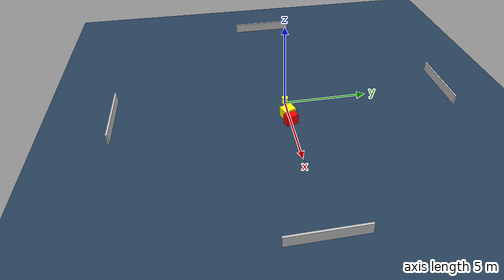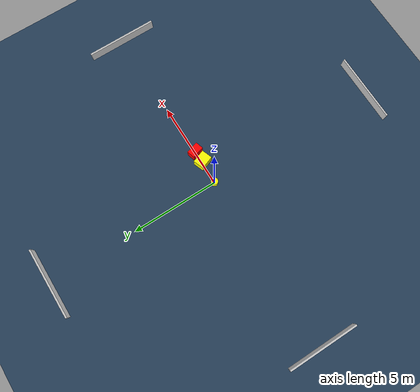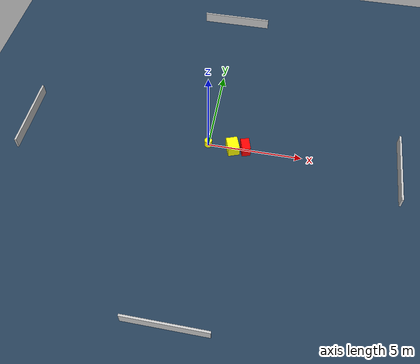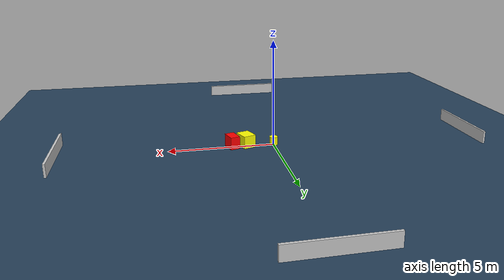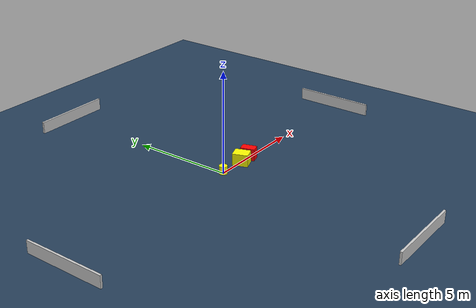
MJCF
<?xml version="1.0" ?>
<mujoco model="generated_environment">
  <option timestep="0.01" integrator="RK4" cone="elliptic"/>
  <default>
    <geom density="1"/>
  </default>
  <asset>
    <texture builtin="gradient" height="3072" name="skybox" rgb1="0.3 0.5 0.7" rgb2="0 0 0" type="skybox" width="512"/>
    <texture builtin="checker" height="300" name="groundplane" rgb1="0.2 0.3 0.4" rgb2="0.1 0.2 0.3" type="2d" width="300"/>
    <material name="groundplane" reflectance="0.2" texrepeat="5 5" texture="groundplane"/>
  </asset>
  <worldbody>
    <light dir="0 0 -1" directional="true" pos="0 0 1.5"/>
    <geom condim="3" friction="0.5 0.005 0.001" material="groundplane" name="floor" pos="0 0 0" size="0 0 0.05" type="plane"/>
    <body name="walls">
      <geom name="wall_1" condim="4" pos="-10.0 0.0 0.3" rgba="0.800000011920929 0.800000011920929 0.800000011920929 1.0" size="0.05 2.0 0.3" type="box"/>
      <geom name="wall_2" condim="4" pos="10.0 0.0 0.3" rgba="0.800000011920929 0.800000011920929 0.800000011920929 1.0" size="0.05 2.0 0.3" type="box"/>
      <geom name="wall_3" condim="4" pos="0.0 -10.0 0.3" rgba="0.800000011920929 0.800000011920929 0.800000011920929 1.0" size="2.0 0.05 0.3" type="box"/>
      <geom name="wall_4" condim="4" pos="0.0 10.0 0.3" rgba="0.800000011920929 0.800000011920929 0.800000011920929 1.0" size="2.0 0.05 0.3" type="box"/>
    </body>
    <body name="robot">
      <joint name="joint_x" type="slide" pos="0 0 0" axis="1 0 0"/>
      <joint name="joint_y" type="slide" pos="0 0 0" axis="0 1 0"/>
      <geom name="robot" type="cylinder" pos="0.0 0.0 0.2" size="0.2 0.2 0.0" mass="5.0" friction="1.0 0.005 0.0001" condim="4" rgba="1.0 1.0 0.0 1.0"/>
    </body>
    <body name="obstacle_1_movable">
      <geom name="obstacle_1_movable" condim="4" pos="1.3225883577883149 -0.08383002512260737 0.3" euler="0 0 20.208272885176907" friction="0.0 0.005 0.001" rgba="1.0 1.0 0.0 1.0" size="0.3058499910100612 0.38273384457026527 0.3" type="box" mass="0.1"/>
      <joint type="free"/>
    </body>
    <body name="obstacle_2_static">
      <geom name="obstacle_2_static" condim="4" pos="1.9929302739813866 -0.016661152852296426 0.3" euler="0 0 286.72116703834206" friction="0.0 0.005 0.001" rgba="1.0 0.0 0.0 1.0" size="0.3555578152320771 0.2266767776738822 0.3" type="box"/>
    </body>
  </worldbody>
  <actuator>
    <motor name="actuator_x" joint="joint_x" gear="1" ctrlrange="-1 1"/>
    <motor name="actuator_y" joint="joint_y" gear="1" ctrlrange="-1 1"/>
  </actuator>
</mujoco>
